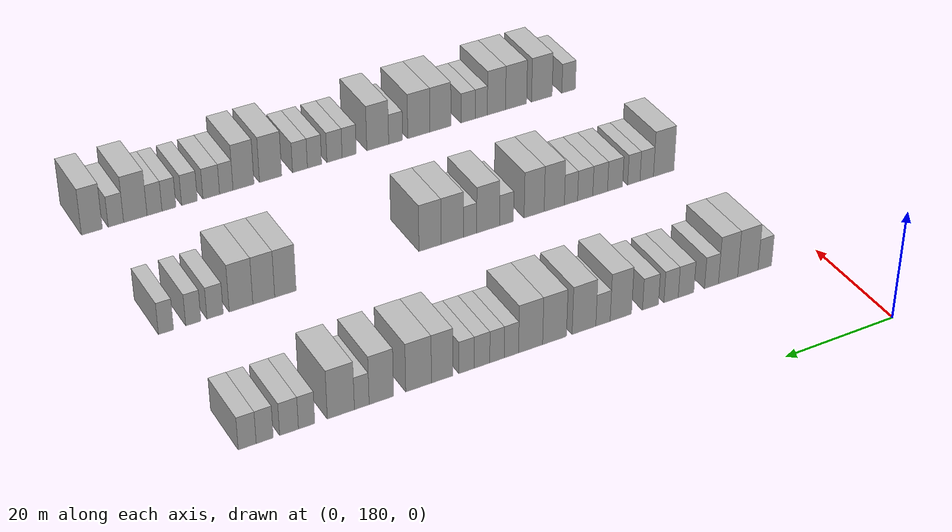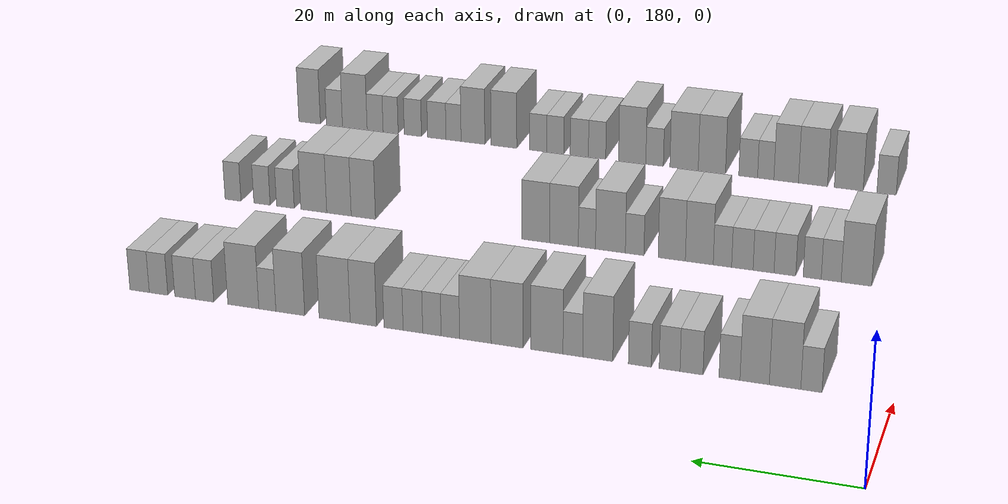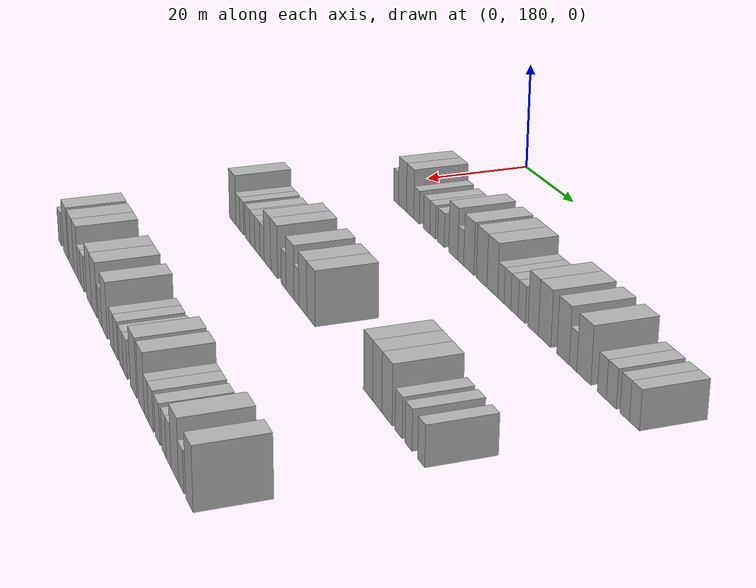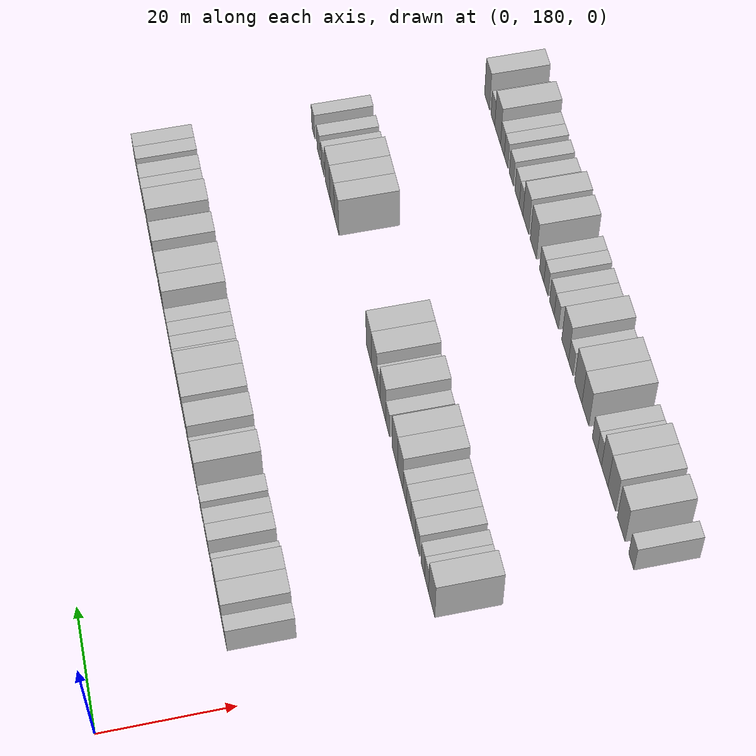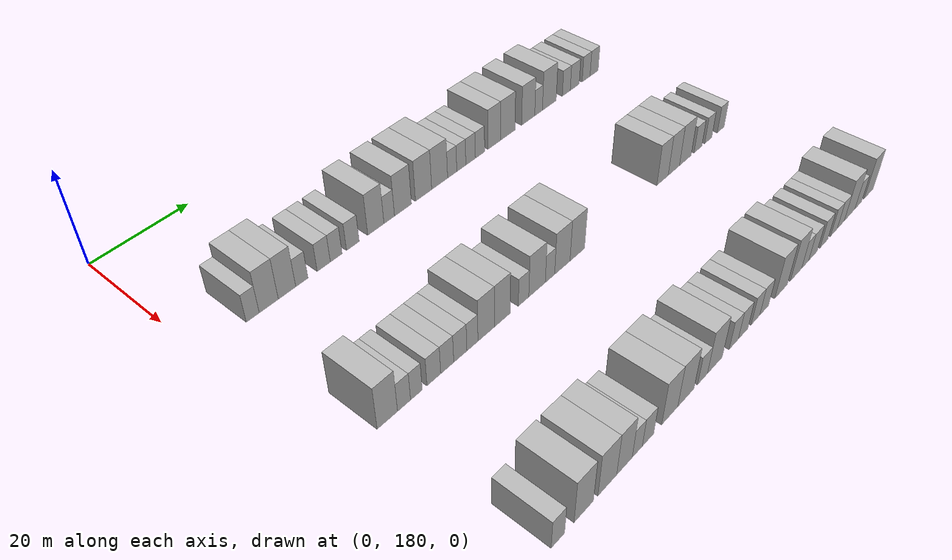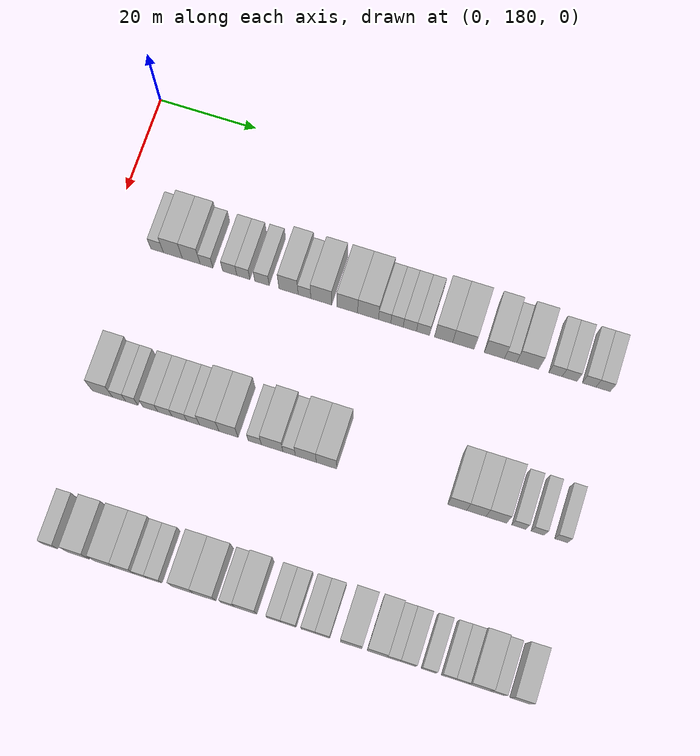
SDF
<sdf version="1.6">
 <world name="default">
  <model name="building_115">
   <static>1</static>
   <pose>25.0000 189.9657 0 0.000000 0.000000 0.000000</pose>
   <link name="link">
    <pose>0 0 3.00 0 0 0</pose>
    <collision name="collision"><geometry><box><size>10.0000 2.5913 6.0000</size></box></geometry></collision>
    <visual name="visual">
     <cast_shadows>0</cast_shadows>
     <geometry><box><size>10.0000 2.5913 6.0000</size></box></geometry>
     <material>
      <script>
       <uri>model://HANNAS_wall/materials/scripts</uri>
       <uri>model://HANNAS_wall/materials/textures</uri>
       <name>vrc/HANNAS_wall</name>
      </script>
     </material>
    </visual>
   </link>
  </model>
  <model name="building_116">
   <static>1</static>
   <pose>25.0000 193.2007 0 0.000000 0.000000 0.000000</pose>
   <link name="link">
    <pose>0 0 4.50 0 0 0</pose>
    <collision name="collision"><geometry><box><size>10.0000 3.8787 9.0000</size></box></geometry></collision>
    <visual name="visual">
     <cast_shadows>0</cast_shadows>
     <geometry><box><size>10.0000 3.8787 9.0000</size></box></geometry>
     <material>
      <script>
       <uri>model://HANNAS_wall/materials/scripts</uri>
       <uri>model://HANNAS_wall/materials/textures</uri>
       <name>vrc/HANNAS_wall</name>
      </script>
     </material>
    </visual>
   </link>
  </model>
  <model name="building_117">
   <static>1</static>
   <pose>25.0000 196.9567 0 0.000000 0.000000 0.000000</pose>
   <link name="link">
    <pose>0 0 4.50 0 0 0</pose>
    <collision name="collision"><geometry><box><size>10.0000 3.6334 9.0000</size></box></geometry></collision>
    <visual name="visual">
     <cast_shadows>0</cast_shadows>
     <geometry><box><size>10.0000 3.6334 9.0000</size></box></geometry>
     <material>
      <script>
       <uri>model://HANNAS_wall/materials/scripts</uri>
       <uri>model://HANNAS_wall/materials/textures</uri>
       <name>vrc/HANNAS_wall</name>
      </script>
     </material>
    </visual>
   </link>
  </model>
  <model name="building_118">
   <static>1</static>
   <pose>25.0000 200.0818 0 0.000000 0.000000 0.000000</pose>
   <link name="link">
    <pose>0 0 3.00 0 0 0</pose>
    <collision name="collision"><geometry><box><size>10.0000 2.6168 6.0000</size></box></geometry></collision>
    <visual name="visual">
     <cast_shadows>0</cast_shadows>
     <geometry><box><size>10.0000 2.6168 6.0000</size></box></geometry>
     <material>
      <script>
       <uri>model://HANNAS_wall/materials/scripts</uri>
       <uri>model://HANNAS_wall/materials/textures</uri>
       <name>vrc/HANNAS_wall</name>
      </script>
     </material>
    </visual>
   </link>
  </model>
  <model name="building_119">
   <static>1</static>
   <pose>25.0000 204.8386 0 0.000000 0.000000 0.000000</pose>
   <link name="link">
    <pose>0 0 3.00 0 0 0</pose>
    <collision name="collision"><geometry><box><size>10.0000 2.8968 6.0000</size></box></geometry></collision>
    <visual name="visual">
     <cast_shadows>0</cast_shadows>
     <geometry><box><size>10.0000 2.8968 6.0000</size></box></geometry>
     <material>
      <script>
       <uri>model://HANNAS_wall/materials/scripts</uri>
       <uri>model://HANNAS_wall/materials/textures</uri>
       <name>vrc/HANNAS_wall</name>
      </script>
     </material>
    </visual>
   </link>
  </model>
  <model name="building_120">
   <static>1</static>
   <pose>25.0000 207.6082 0 0.000000 0.000000 0.000000</pose>
   <link name="link">
    <pose>0 0 3.00 0 0 0</pose>
    <collision name="collision"><geometry><box><size>10.0000 2.6425 6.0000</size></box></geometry></collision>
    <visual name="visual">
     <cast_shadows>0</cast_shadows>
     <geometry><box><size>10.0000 2.6425 6.0000</size></box></geometry>
     <material>
      <script>
       <uri>model://HANNAS_wall/materials/scripts</uri>
       <uri>model://HANNAS_wall/materials/textures</uri>
       <name>vrc/HANNAS_wall</name>
      </script>
     </material>
    </visual>
   </link>
  </model>
  <model name="building_121">
   <static>1</static>
   <pose>25.0000 211.3905 0 0.000000 0.000000 0.000000</pose>
   <link name="link">
    <pose>0 0 3.00 0 0 0</pose>
    <collision name="collision"><geometry><box><size>10.0000 2.9220 6.0000</size></box></geometry></collision>
    <visual name="visual">
     <cast_shadows>0</cast_shadows>
     <geometry><box><size>10.0000 2.9220 6.0000</size></box></geometry>
     <material>
      <script>
       <uri>model://HANNAS_wall/materials/scripts</uri>
       <uri>model://HANNAS_wall/materials/textures</uri>
       <name>vrc/HANNAS_wall</name>
      </script>
     </material>
    </visual>
   </link>
  </model>
  <model name="building_122">
   <static>1</static>
   <pose>25.0000 216.7865 0 0.000000 0.000000 0.000000</pose>
   <link name="link">
    <pose>0 0 4.50 0 0 0</pose>
    <collision name="collision"><geometry><box><size>10.0000 3.8701 9.0000</size></box></geometry></collision>
    <visual name="visual">
     <cast_shadows>0</cast_shadows>
     <geometry><box><size>10.0000 3.8701 9.0000</size></box></geometry>
     <material>
      <script>
       <uri>model://HANNAS_wall/materials/scripts</uri>
       <uri>model://HANNAS_wall/materials/textures</uri>
       <name>vrc/HANNAS_wall</name>
      </script>
     </material>
    </visual>
   </link>
  </model>
  <model name="building_123">
   <static>1</static>
   <pose>25.0000 220.0058 0 0.000000 0.000000 0.000000</pose>
   <link name="link">
    <pose>0 0 3.00 0 0 0</pose>
    <collision name="collision"><geometry><box><size>10.0000 2.5684 6.0000</size></box></geometry></collision>
    <visual name="visual">
     <cast_shadows>0</cast_shadows>
     <geometry><box><size>10.0000 2.5684 6.0000</size></box></geometry>
     <material>
      <script>
       <uri>model://HANNAS_wall/materials/scripts</uri>
       <uri>model://HANNAS_wall/materials/textures</uri>
       <name>vrc/HANNAS_wall</name>
      </script>
     </material>
    </visual>
   </link>
  </model>
  <model name="building_124">
   <static>1</static>
   <pose>25.0000 223.4041 0 0.000000 0.000000 0.000000</pose>
   <link name="link">
    <pose>0 0 4.50 0 0 0</pose>
    <collision name="collision"><geometry><box><size>10.0000 4.2282 9.0000</size></box></geometry></collision>
    <visual name="visual">
     <cast_shadows>0</cast_shadows>
     <geometry><box><size>10.0000 4.2282 9.0000</size></box></geometry>
     <material>
      <script>
       <uri>model://HANNAS_wall/materials/scripts</uri>
       <uri>model://HANNAS_wall/materials/textures</uri>
       <name>vrc/HANNAS_wall</name>
      </script>
     </material>
    </visual>
   </link>
  </model>
  <model name="building_125">
   <static>1</static>
   <pose>25.0000 228.6170 0 0.000000 0.000000 0.000000</pose>
   <link name="link">
    <pose>0 0 4.50 0 0 0</pose>
    <collision name="collision"><geometry><box><size>10.0000 4.1978 9.0000</size></box></geometry></collision>
    <visual name="visual">
     <cast_shadows>0</cast_shadows>
     <geometry><box><size>10.0000 4.1978 9.0000</size></box></geometry>
     <material>
      <script>
       <uri>model://HANNAS_wall/materials/scripts</uri>
       <uri>model://HANNAS_wall/materials/textures</uri>
       <name>vrc/HANNAS_wall</name>
      </script>
     </material>
    </visual>
   </link>
  </model>
  <model name="building_126">
   <static>1</static>
   <pose>25.0000 232.8153 0 0.000000 0.000000 0.000000</pose>
   <link name="link">
    <pose>0 0 4.50 0 0 0</pose>
    <collision name="collision"><geometry><box><size>10.0000 4.1987 9.0000</size></box></geometry></collision>
    <visual name="visual">
     <cast_shadows>0</cast_shadows>
     <geometry><box><size>10.0000 4.1987 9.0000</size></box></geometry>
     <material>
      <script>
       <uri>model://HANNAS_wall/materials/scripts</uri>
       <uri>model://HANNAS_wall/materials/textures</uri>
       <name>vrc/HANNAS_wall</name>
      </script>
     </material>
    </visual>
   </link>
  </model>
  <model name="building_127">
   <static>1</static>
   <pose>25.0000 236.1542 0 0.000000 0.000000 0.000000</pose>
   <link name="link">
    <pose>0 0 3.00 0 0 0</pose>
    <collision name="collision"><geometry><box><size>10.0000 2.4790 6.0000</size></box></geometry></collision>
    <visual name="visual">
     <cast_shadows>0</cast_shadows>
     <geometry><box><size>10.0000 2.4790 6.0000</size></box></geometry>
     <material>
      <script>
       <uri>model://HANNAS_wall/materials/scripts</uri>
       <uri>model://HANNAS_wall/materials/textures</uri>
       <name>vrc/HANNAS_wall</name>
      </script>
     </material>
    </visual>
   </link>
  </model>
  <model name="building_128">
   <static>1</static>
   <pose>25.0000 238.6329 0 0.000000 0.000000 0.000000</pose>
   <link name="link">
    <pose>0 0 3.00 0 0 0</pose>
    <collision name="collision"><geometry><box><size>10.0000 2.4785 6.0000</size></box></geometry></collision>
    <visual name="visual">
     <cast_shadows>0</cast_shadows>
     <geometry><box><size>10.0000 2.4785 6.0000</size></box></geometry>
     <material>
      <script>
       <uri>model://HANNAS_wall/materials/scripts</uri>
       <uri>model://HANNAS_wall/materials/textures</uri>
       <name>vrc/HANNAS_wall</name>
      </script>
     </material>
    </visual>
   </link>
  </model>
  <model name="building_129">
   <static>1</static>
   <pose>25.0000 241.1978 0 0.000000 0.000000 0.000000</pose>
   <link name="link">
    <pose>0 0 3.00 0 0 0</pose>
    <collision name="collision"><geometry><box><size>10.0000 2.6514 6.0000</size></box></geometry></collision>
    <visual name="visual">
     <cast_shadows>0</cast_shadows>
     <geometry><box><size>10.0000 2.6514 6.0000</size></box></geometry>
     <material>
      <script>
       <uri>model://HANNAS_wall/materials/scripts</uri>
       <uri>model://HANNAS_wall/materials/textures</uri>
       <name>vrc/HANNAS_wall</name>
      </script>
     </material>
    </visual>
   </link>
  </model>
  <model name="building_130">
   <static>1</static>
   <pose>25.0000 243.8275 0 0.000000 0.000000 0.000000</pose>
   <link name="link">
    <pose>0 0 3.00 0 0 0</pose>
    <collision name="collision"><geometry><box><size>10.0000 2.6080 6.0000</size></box></geometry></collision>
    <visual name="visual">
     <cast_shadows>0</cast_shadows>
     <geometry><box><size>10.0000 2.6080 6.0000</size></box></geometry>
     <material>
      <script>
       <uri>model://HANNAS_wall/materials/scripts</uri>
       <uri>model://HANNAS_wall/materials/textures</uri>
       <name>vrc/HANNAS_wall</name>
      </script>
     </material>
    </visual>
   </link>
  </model>
  <model name="building_131">
   <static>1</static>
   <pose>25.0000 247.9406 0 0.000000 0.000000 0.000000</pose>
   <link name="link">
    <pose>0 0 4.50 0 0 0</pose>
    <collision name="collision"><geometry><box><size>10.0000 3.6183 9.0000</size></box></geometry></collision>
    <visual name="visual">
     <cast_shadows>0</cast_shadows>
     <geometry><box><size>10.0000 3.6183 9.0000</size></box></geometry>
     <material>
      <script>
       <uri>model://HANNAS_wall/materials/scripts</uri>
       <uri>model://HANNAS_wall/materials/textures</uri>
       <name>vrc/HANNAS_wall</name>
      </script>
     </material>
    </visual>
   </link>
  </model>
  <model name="building_132">
   <static>1</static>
   <pose>25.0000 251.8926 0 0.000000 0.000000 0.000000</pose>
   <link name="link">
    <pose>0 0 4.50 0 0 0</pose>
    <collision name="collision"><geometry><box><size>10.0000 4.2857 9.0000</size></box></geometry></collision>
    <visual name="visual">
     <cast_shadows>0</cast_shadows>
     <geometry><box><size>10.0000 4.2857 9.0000</size></box></geometry>
     <material>
      <script>
       <uri>model://HANNAS_wall/materials/scripts</uri>
       <uri>model://HANNAS_wall/materials/textures</uri>
       <name>vrc/HANNAS_wall</name>
      </script>
     </material>
    </visual>
   </link>
  </model>
  <model name="building_133">
   <static>1</static>
   <pose>25.0000 258.0477 0 0.000000 0.000000 0.000000</pose>
   <link name="link">
    <pose>0 0 4.50 0 0 0</pose>
    <collision name="collision"><geometry><box><size>10.0000 4.0246 9.0000</size></box></geometry></collision>
    <visual name="visual">
     <cast_shadows>0</cast_shadows>
     <geometry><box><size>10.0000 4.0246 9.0000</size></box></geometry>
     <material>
      <script>
       <uri>model://HANNAS_wall/materials/scripts</uri>
       <uri>model://HANNAS_wall/materials/textures</uri>
       <name>vrc/HANNAS_wall</name>
      </script>
     </material>
    </visual>
   </link>
  </model>
  <model name="building_134">
   <static>1</static>
   <pose>25.0000 261.2603 0 0.000000 0.000000 0.000000</pose>
   <link name="link">
    <pose>0 0 3.00 0 0 0</pose>
    <collision name="collision"><geometry><box><size>10.0000 2.4005 6.0000</size></box></geometry></collision>
    <visual name="visual">
     <cast_shadows>0</cast_shadows>
     <geometry><box><size>10.0000 2.4005 6.0000</size></box></geometry>
     <material>
      <script>
       <uri>model://HANNAS_wall/materials/scripts</uri>
       <uri>model://HANNAS_wall/materials/textures</uri>
       <name>vrc/HANNAS_wall</name>
      </script>
     </material>
    </visual>
   </link>
  </model>
  <model name="building_135">
   <static>1</static>
   <pose>25.0000 264.6510 0 0.000000 0.000000 0.000000</pose>
   <link name="link">
    <pose>0 0 4.50 0 0 0</pose>
    <collision name="collision"><geometry><box><size>10.0000 4.3810 9.0000</size></box></geometry></collision>
    <visual name="visual">
     <cast_shadows>0</cast_shadows>
     <geometry><box><size>10.0000 4.3810 9.0000</size></box></geometry>
     <material>
      <script>
       <uri>model://HANNAS_wall/materials/scripts</uri>
       <uri>model://HANNAS_wall/materials/textures</uri>
       <name>vrc/HANNAS_wall</name>
      </script>
     </material>
    </visual>
   </link>
  </model>
  <model name="building_136">
   <static>1</static>
   <pose>25.0000 270.1463 0 0.000000 0.000000 0.000000</pose>
   <link name="link">
    <pose>0 0 3.00 0 0 0</pose>
    <collision name="collision"><geometry><box><size>10.0000 2.6095 6.0000</size></box></geometry></collision>
    <visual name="visual">
     <cast_shadows>0</cast_shadows>
     <geometry><box><size>10.0000 2.6095 6.0000</size></box></geometry>
     <material>
      <script>
       <uri>model://HANNAS_wall/materials/scripts</uri>
       <uri>model://HANNAS_wall/materials/textures</uri>
       <name>vrc/HANNAS_wall</name>
      </script>
     </material>
    </visual>
   </link>
  </model>
  <model name="building_137">
   <static>1</static>
   <pose>25.0000 272.9414 0 0.000000 0.000000 0.000000</pose>
   <link name="link">
    <pose>0 0 3.00 0 0 0</pose>
    <collision name="collision"><geometry><box><size>10.0000 2.9807 6.0000</size></box></geometry></collision>
    <visual name="visual">
     <cast_shadows>0</cast_shadows>
     <geometry><box><size>10.0000 2.9807 6.0000</size></box></geometry>
     <material>
      <script>
       <uri>model://HANNAS_wall/materials/scripts</uri>
       <uri>model://HANNAS_wall/materials/textures</uri>
       <name>vrc/HANNAS_wall</name>
      </script>
     </material>
    </visual>
   </link>
  </model>
  <model name="building_138">
   <static>1</static>
   <pose>25.0000 276.7723 0 0.000000 0.000000 0.000000</pose>
   <link name="link">
    <pose>0 0 3.00 0 0 0</pose>
    <collision name="collision"><geometry><box><size>10.0000 2.6812 6.0000</size></box></geometry></collision>
    <visual name="visual">
     <cast_shadows>0</cast_shadows>
     <geometry><box><size>10.0000 2.6812 6.0000</size></box></geometry>
     <material>
      <script>
       <uri>model://HANNAS_wall/materials/scripts</uri>
       <uri>model://HANNAS_wall/materials/textures</uri>
       <name>vrc/HANNAS_wall</name>
      </script>
     </material>
    </visual>
   </link>
  </model>
  <model name="building_139">
   <static>1</static>
   <pose>25.0000 279.5157 0 0.000000 0.000000 0.000000</pose>
   <link name="link">
    <pose>0 0 3.00 0 0 0</pose>
    <collision name="collision"><geometry><box><size>10.0000 2.8056 6.0000</size></box></geometry></collision>
    <visual name="visual">
     <cast_shadows>0</cast_shadows>
     <geometry><box><size>10.0000 2.8056 6.0000</size></box></geometry>
     <material>
      <script>
       <uri>model://HANNAS_wall/materials/scripts</uri>
       <uri>model://HANNAS_wall/materials/textures</uri>
       <name>vrc/HANNAS_wall</name>
      </script>
     </material>
    </visual>
   </link>
  </model>
  <model name="building_257">
   <static>1</static>
   <pose>55.0000 189.7121 0 0.000000 0.000000 0.000000</pose>
   <link name="link">
    <pose>0 0 4.50 0 0 0</pose>
    <collision name="collision"><geometry><box><size>10.0000 4.0807 9.0000</size></box></geometry></collision>
    <visual name="visual">
     <cast_shadows>0</cast_shadows>
     <geometry><box><size>10.0000 4.0807 9.0000</size></box></geometry>
     <material>
      <script>
       <uri>model://HANNAS_wall/materials/scripts</uri>
       <uri>model://HANNAS_wall/materials/textures</uri>
       <name>vrc/HANNAS_wall</name>
      </script>
     </material>
    </visual>
   </link>
  </model>
  <model name="building_258">
   <static>1</static>
   <pose>55.0000 193.0856 0 0.000000 0.000000 0.000000</pose>
   <link name="link">
    <pose>0 0 3.00 0 0 0</pose>
    <collision name="collision"><geometry><box><size>10.0000 2.6662 6.0000</size></box></geometry></collision>
    <visual name="visual">
     <cast_shadows>0</cast_shadows>
     <geometry><box><size>10.0000 2.6662 6.0000</size></box></geometry>
     <material>
      <script>
       <uri>model://HANNAS_wall/materials/scripts</uri>
       <uri>model://HANNAS_wall/materials/textures</uri>
       <name>vrc/HANNAS_wall</name>
      </script>
     </material>
    </visual>
   </link>
  </model>
  <model name="building_259">
   <static>1</static>
   <pose>55.0000 195.6344 0 0.000000 0.000000 0.000000</pose>
   <link name="link">
    <pose>0 0 3.00 0 0 0</pose>
    <collision name="collision"><geometry><box><size>10.0000 2.4313 6.0000</size></box></geometry></collision>
    <visual name="visual">
     <cast_shadows>0</cast_shadows>
     <geometry><box><size>10.0000 2.4313 6.0000</size></box></geometry>
     <material>
      <script>
       <uri>model://HANNAS_wall/materials/scripts</uri>
       <uri>model://HANNAS_wall/materials/textures</uri>
       <name>vrc/HANNAS_wall</name>
      </script>
     </material>
    </visual>
   </link>
  </model>
  <model name="building_260">
   <static>1</static>
   <pose>55.0000 199.3280 0 0.000000 0.000000 0.000000</pose>
   <link name="link">
    <pose>0 0 3.00 0 0 0</pose>
    <collision name="collision"><geometry><box><size>10.0000 2.9559 6.0000</size></box></geometry></collision>
    <visual name="visual">
     <cast_shadows>0</cast_shadows>
     <geometry><box><size>10.0000 2.9559 6.0000</size></box></geometry>
     <material>
      <script>
       <uri>model://HANNAS_wall/materials/scripts</uri>
       <uri>model://HANNAS_wall/materials/textures</uri>
       <name>vrc/HANNAS_wall</name>
      </script>
     </material>
    </visual>
   </link>
  </model>
  <model name="building_261">
   <static>1</static>
   <pose>55.0000 202.2358 0 0.000000 0.000000 0.000000</pose>
   <link name="link">
    <pose>0 0 3.00 0 0 0</pose>
    <collision name="collision"><geometry><box><size>10.0000 2.8597 6.0000</size></box></geometry></collision>
    <visual name="visual">
     <cast_shadows>0</cast_shadows>
     <geometry><box><size>10.0000 2.8597 6.0000</size></box></geometry>
     <material>
      <script>
       <uri>model://HANNAS_wall/materials/scripts</uri>
       <uri>model://HANNAS_wall/materials/textures</uri>
       <name>vrc/HANNAS_wall</name>
      </script>
     </material>
    </visual>
   </link>
  </model>
  <model name="building_262">
   <static>1</static>
   <pose>55.0000 205.1383 0 0.000000 0.000000 0.000000</pose>
   <link name="link">
    <pose>0 0 3.00 0 0 0</pose>
    <collision name="collision"><geometry><box><size>10.0000 2.9451 6.0000</size></box></geometry></collision>
    <visual name="visual">
     <cast_shadows>0</cast_shadows>
     <geometry><box><size>10.0000 2.9451 6.0000</size></box></geometry>
     <material>
      <script>
       <uri>model://HANNAS_wall/materials/scripts</uri>
       <uri>model://HANNAS_wall/materials/textures</uri>
       <name>vrc/HANNAS_wall</name>
      </script>
     </material>
    </visual>
   </link>
  </model>
  <model name="building_263">
   <static>1</static>
   <pose>55.0000 207.8787 0 0.000000 0.000000 0.000000</pose>
   <link name="link">
    <pose>0 0 3.00 0 0 0</pose>
    <collision name="collision"><geometry><box><size>10.0000 2.5357 6.0000</size></box></geometry></collision>
    <visual name="visual">
     <cast_shadows>0</cast_shadows>
     <geometry><box><size>10.0000 2.5357 6.0000</size></box></geometry>
     <material>
      <script>
       <uri>model://HANNAS_wall/materials/scripts</uri>
       <uri>model://HANNAS_wall/materials/textures</uri>
       <name>vrc/HANNAS_wall</name>
      </script>
     </material>
    </visual>
   </link>
  </model>
  <model name="building_264">
   <static>1</static>
   <pose>55.0000 211.0791 0 0.000000 0.000000 0.000000</pose>
   <link name="link">
    <pose>0 0 4.50 0 0 0</pose>
    <collision name="collision"><geometry><box><size>10.0000 3.8650 9.0000</size></box></geometry></collision>
    <visual name="visual">
     <cast_shadows>0</cast_shadows>
     <geometry><box><size>10.0000 3.8650 9.0000</size></box></geometry>
     <material>
      <script>
       <uri>model://HANNAS_wall/materials/scripts</uri>
       <uri>model://HANNAS_wall/materials/textures</uri>
       <name>vrc/HANNAS_wall</name>
      </script>
     </material>
    </visual>
   </link>
  </model>
  <model name="building_265">
   <static>1</static>
   <pose>55.0000 214.9082 0 0.000000 0.000000 0.000000</pose>
   <link name="link">
    <pose>0 0 4.50 0 0 0</pose>
    <collision name="collision"><geometry><box><size>10.0000 3.7932 9.0000</size></box></geometry></collision>
    <visual name="visual">
     <cast_shadows>0</cast_shadows>
     <geometry><box><size>10.0000 3.7932 9.0000</size></box></geometry>
     <material>
      <script>
       <uri>model://HANNAS_wall/materials/scripts</uri>
       <uri>model://HANNAS_wall/materials/textures</uri>
       <name>vrc/HANNAS_wall</name>
      </script>
     </material>
    </visual>
   </link>
  </model>
  <model name="building_266">
   <static>1</static>
   <pose>55.0000 220.1169 0 0.000000 0.000000 0.000000</pose>
   <link name="link">
    <pose>0 0 3.00 0 0 0</pose>
    <collision name="collision"><geometry><box><size>10.0000 2.6241 6.0000</size></box></geometry></collision>
    <visual name="visual">
     <cast_shadows>0</cast_shadows>
     <geometry><box><size>10.0000 2.6241 6.0000</size></box></geometry>
     <material>
      <script>
       <uri>model://HANNAS_wall/materials/scripts</uri>
       <uri>model://HANNAS_wall/materials/textures</uri>
       <name>vrc/HANNAS_wall</name>
      </script>
     </material>
    </visual>
   </link>
  </model>
  <model name="building_267">
   <static>1</static>
   <pose>55.0000 223.5420 0 0.000000 0.000000 0.000000</pose>
   <link name="link">
    <pose>0 0 4.50 0 0 0</pose>
    <collision name="collision"><geometry><box><size>10.0000 4.2261 9.0000</size></box></geometry></collision>
    <visual name="visual">
     <cast_shadows>0</cast_shadows>
     <geometry><box><size>10.0000 4.2261 9.0000</size></box></geometry>
     <material>
      <script>
       <uri>model://HANNAS_wall/materials/scripts</uri>
       <uri>model://HANNAS_wall/materials/textures</uri>
       <name>vrc/HANNAS_wall</name>
      </script>
     </material>
    </visual>
   </link>
  </model>
  <model name="building_268">
   <static>1</static>
   <pose>55.0000 226.8796 0 0.000000 0.000000 0.000000</pose>
   <link name="link">
    <pose>0 0 3.00 0 0 0</pose>
    <collision name="collision"><geometry><box><size>10.0000 2.4490 6.0000</size></box></geometry></collision>
    <visual name="visual">
     <cast_shadows>0</cast_shadows>
     <geometry><box><size>10.0000 2.4490 6.0000</size></box></geometry>
     <material>
      <script>
       <uri>model://HANNAS_wall/materials/scripts</uri>
       <uri>model://HANNAS_wall/materials/textures</uri>
       <name>vrc/HANNAS_wall</name>
      </script>
     </material>
    </visual>
   </link>
  </model>
  <model name="building_269">
   <static>1</static>
   <pose>55.0000 230.1588 0 0.000000 0.000000 0.000000</pose>
   <link name="link">
    <pose>0 0 4.50 0 0 0</pose>
    <collision name="collision"><geometry><box><size>10.0000 4.1093 9.0000</size></box></geometry></collision>
    <visual name="visual">
     <cast_shadows>0</cast_shadows>
     <geometry><box><size>10.0000 4.1093 9.0000</size></box></geometry>
     <material>
      <script>
       <uri>model://HANNAS_wall/materials/scripts</uri>
       <uri>model://HANNAS_wall/materials/textures</uri>
       <name>vrc/HANNAS_wall</name>
      </script>
     </material>
    </visual>
   </link>
  </model>
  <model name="building_270">
   <static>1</static>
   <pose>55.0000 234.2159 0 0.000000 0.000000 0.000000</pose>
   <link name="link">
    <pose>0 0 4.50 0 0 0</pose>
    <collision name="collision"><geometry><box><size>10.0000 4.0050 9.0000</size></box></geometry></collision>
    <visual name="visual">
     <cast_shadows>0</cast_shadows>
     <geometry><box><size>10.0000 4.0050 9.0000</size></box></geometry>
     <material>
      <script>
       <uri>model://HANNAS_wall/materials/scripts</uri>
       <uri>model://HANNAS_wall/materials/textures</uri>
       <name>vrc/HANNAS_wall</name>
      </script>
     </material>
    </visual>
   </link>
  </model>
  <model name="building_271">
   <static>1</static>
   <pose>55.0000 259.7252 0 0.000000 0.000000 0.000000</pose>
   <link name="link">
    <pose>0 0 4.50 0 0 0</pose>
    <collision name="collision"><geometry><box><size>10.0000 3.6712 9.0000</size></box></geometry></collision>
    <visual name="visual">
     <cast_shadows>0</cast_shadows>
     <geometry><box><size>10.0000 3.6712 9.0000</size></box></geometry>
     <material>
      <script>
       <uri>model://HANNAS_wall/materials/scripts</uri>
       <uri>model://HANNAS_wall/materials/textures</uri>
       <name>vrc/HANNAS_wall</name>
      </script>
     </material>
    </visual>
   </link>
  </model>
  <model name="building_272">
   <static>1</static>
   <pose>55.0000 263.4195 0 0.000000 0.000000 0.000000</pose>
   <link name="link">
    <pose>0 0 4.50 0 0 0</pose>
    <collision name="collision"><geometry><box><size>10.0000 3.7174 9.0000</size></box></geometry></collision>
    <visual name="visual">
     <cast_shadows>0</cast_shadows>
     <geometry><box><size>10.0000 3.7174 9.0000</size></box></geometry>
     <material>
      <script>
       <uri>model://HANNAS_wall/materials/scripts</uri>
       <uri>model://HANNAS_wall/materials/textures</uri>
       <name>vrc/HANNAS_wall</name>
      </script>
     </material>
    </visual>
   </link>
  </model>
  <model name="building_273">
   <static>1</static>
   <pose>55.0000 267.2707 0 0.000000 0.000000 0.000000</pose>
   <link name="link">
    <pose>0 0 4.50 0 0 0</pose>
    <collision name="collision"><geometry><box><size>10.0000 3.9849 9.0000</size></box></geometry></collision>
    <visual name="visual">
     <cast_shadows>0</cast_shadows>
     <geometry><box><size>10.0000 3.9849 9.0000</size></box></geometry>
     <material>
      <script>
       <uri>model://HANNAS_wall/materials/scripts</uri>
       <uri>model://HANNAS_wall/materials/textures</uri>
       <name>vrc/HANNAS_wall</name>
      </script>
     </material>
    </visual>
   </link>
  </model>
  <model name="building_274">
   <static>1</static>
   <pose>55.0000 271.6258 0 0.000000 0.000000 0.000000</pose>
   <link name="link">
    <pose>0 0 3.00 0 0 0</pose>
    <collision name="collision"><geometry><box><size>10.0000 2.7253 6.0000</size></box></geometry></collision>
    <visual name="visual">
     <cast_shadows>0</cast_shadows>
     <geometry><box><size>10.0000 2.7253 6.0000</size></box></geometry>
     <material>
      <script>
       <uri>model://HANNAS_wall/materials/scripts</uri>
       <uri>model://HANNAS_wall/materials/textures</uri>
       <name>vrc/HANNAS_wall</name>
      </script>
     </material>
    </visual>
   </link>
  </model>
  <model name="building_275">
   <static>1</static>
   <pose>55.0000 275.2507 0 0.000000 0.000000 0.000000</pose>
   <link name="link">
    <pose>0 0 3.00 0 0 0</pose>
    <collision name="collision"><geometry><box><size>10.0000 2.5244 6.0000</size></box></geometry></collision>
    <visual name="visual">
     <cast_shadows>0</cast_shadows>
     <geometry><box><size>10.0000 2.5244 6.0000</size></box></geometry>
     <material>
      <script>
       <uri>model://HANNAS_wall/materials/scripts</uri>
       <uri>model://HANNAS_wall/materials/textures</uri>
       <name>vrc/HANNAS_wall</name>
      </script>
     </material>
    </visual>
   </link>
  </model>
  <model name="building_276">
   <static>1</static>
   <pose>55.0000 279.7564 0 0.000000 0.000000 0.000000</pose>
   <link name="link">
    <pose>0 0 3.00 0 0 0</pose>
    <collision name="collision"><geometry><box><size>10.0000 2.4870 6.0000</size></box></geometry></collision>
    <visual name="visual">
     <cast_shadows>0</cast_shadows>
     <geometry><box><size>10.0000 2.4870 6.0000</size></box></geometry>
     <material>
      <script>
       <uri>model://HANNAS_wall/materials/scripts</uri>
       <uri>model://HANNAS_wall/materials/textures</uri>
       <name>vrc/HANNAS_wall</name>
      </script>
     </material>
    </visual>
   </link>
  </model>
  <model name="building_393">
   <static>1</static>
   <pose>85.0000 190.5302 0 0.000000 0.000000 0.000000</pose>
   <link name="link">
    <pose>0 0 3.00 0 0 0</pose>
    <collision name="collision"><geometry><box><size>10.0000 2.8005 6.0000</size></box></geometry></collision>
    <visual name="visual">
     <cast_shadows>0</cast_shadows>
     <geometry><box><size>10.0000 2.8005 6.0000</size></box></geometry>
     <material>
      <script>
       <uri>model://HANNAS_wall/materials/scripts</uri>
       <uri>model://HANNAS_wall/materials/textures</uri>
       <name>vrc/HANNAS_wall</name>
      </script>
     </material>
    </visual>
   </link>
  </model>
  <model name="building_394">
   <static>1</static>
   <pose>85.0000 196.0380 0 0.000000 0.000000 0.000000</pose>
   <link name="link">
    <pose>0 0 4.50 0 0 0</pose>
    <collision name="collision"><geometry><box><size>10.0000 4.2153 9.0000</size></box></geometry></collision>
    <visual name="visual">
     <cast_shadows>0</cast_shadows>
     <geometry><box><size>10.0000 4.2153 9.0000</size></box></geometry>
     <material>
      <script>
       <uri>model://HANNAS_wall/materials/scripts</uri>
       <uri>model://HANNAS_wall/materials/textures</uri>
       <name>vrc/HANNAS_wall</name>
      </script>
     </material>
    </visual>
   </link>
  </model>
  <model name="building_395">
   <static>1</static>
   <pose>85.0000 201.2855 0 0.000000 0.000000 0.000000</pose>
   <link name="link">
    <pose>0 0 4.50 0 0 0</pose>
    <collision name="collision"><geometry><box><size>10.0000 4.2797 9.0000</size></box></geometry></collision>
    <visual name="visual">
     <cast_shadows>0</cast_shadows>
     <geometry><box><size>10.0000 4.2797 9.0000</size></box></geometry>
     <material>
      <script>
       <uri>model://HANNAS_wall/materials/scripts</uri>
       <uri>model://HANNAS_wall/materials/textures</uri>
       <name>vrc/HANNAS_wall</name>
      </script>
     </material>
    </visual>
   </link>
  </model>
  <model name="building_396">
   <static>1</static>
   <pose>85.0000 205.2517 0 0.000000 0.000000 0.000000</pose>
   <link name="link">
    <pose>0 0 4.50 0 0 0</pose>
    <collision name="collision"><geometry><box><size>10.0000 3.6527 9.0000</size></box></geometry></collision>
    <visual name="visual">
     <cast_shadows>0</cast_shadows>
     <geometry><box><size>10.0000 3.6527 9.0000</size></box></geometry>
     <material>
      <script>
       <uri>model://HANNAS_wall/materials/scripts</uri>
       <uri>model://HANNAS_wall/materials/textures</uri>
       <name>vrc/HANNAS_wall</name>
      </script>
     </material>
    </visual>
   </link>
  </model>
  <model name="building_397">
   <static>1</static>
   <pose>85.0000 208.2948 0 0.000000 0.000000 0.000000</pose>
   <link name="link">
    <pose>0 0 3.00 0 0 0</pose>
    <collision name="collision"><geometry><box><size>10.0000 2.4333 6.0000</size></box></geometry></collision>
    <visual name="visual">
     <cast_shadows>0</cast_shadows>
     <geometry><box><size>10.0000 2.4333 6.0000</size></box></geometry>
     <material>
      <script>
       <uri>model://HANNAS_wall/materials/scripts</uri>
       <uri>model://HANNAS_wall/materials/textures</uri>
       <name>vrc/HANNAS_wall</name>
      </script>
     </material>
    </visual>
   </link>
  </model>
  <model name="building_398">
   <static>1</static>
   <pose>85.0000 210.9200 0 0.000000 0.000000 0.000000</pose>
   <link name="link">
    <pose>0 0 3.00 0 0 0</pose>
    <collision name="collision"><geometry><box><size>10.0000 2.8173 6.0000</size></box></geometry></collision>
    <visual name="visual">
     <cast_shadows>0</cast_shadows>
     <geometry><box><size>10.0000 2.8173 6.0000</size></box></geometry>
     <material>
      <script>
       <uri>model://HANNAS_wall/materials/scripts</uri>
       <uri>model://HANNAS_wall/materials/textures</uri>
       <name>vrc/HANNAS_wall</name>
      </script>
     </material>
    </visual>
   </link>
  </model>
  <model name="building_399">
   <static>1</static>
   <pose>85.0000 216.3903 0 0.000000 0.000000 0.000000</pose>
   <link name="link">
    <pose>0 0 4.50 0 0 0</pose>
    <collision name="collision"><geometry><box><size>10.0000 4.1233 9.0000</size></box></geometry></collision>
    <visual name="visual">
     <cast_shadows>0</cast_shadows>
     <geometry><box><size>10.0000 4.1233 9.0000</size></box></geometry>
     <material>
      <script>
       <uri>model://HANNAS_wall/materials/scripts</uri>
       <uri>model://HANNAS_wall/materials/textures</uri>
       <name>vrc/HANNAS_wall</name>
      </script>
     </material>
    </visual>
   </link>
  </model>
  <model name="building_400">
   <static>1</static>
   <pose>85.0000 220.6075 0 0.000000 0.000000 0.000000</pose>
   <link name="link">
    <pose>0 0 4.50 0 0 0</pose>
    <collision name="collision"><geometry><box><size>10.0000 4.3111 9.0000</size></box></geometry></collision>
    <visual name="visual">
     <cast_shadows>0</cast_shadows>
     <geometry><box><size>10.0000 4.3111 9.0000</size></box></geometry>
     <material>
      <script>
       <uri>model://HANNAS_wall/materials/scripts</uri>
       <uri>model://HANNAS_wall/materials/textures</uri>
       <name>vrc/HANNAS_wall</name>
      </script>
     </material>
    </visual>
   </link>
  </model>
  <model name="building_401">
   <static>1</static>
   <pose>85.0000 225.1104 0 0.000000 0.000000 0.000000</pose>
   <link name="link">
    <pose>0 0 3.00 0 0 0</pose>
    <collision name="collision"><geometry><box><size>10.0000 2.6947 6.0000</size></box></geometry></collision>
    <visual name="visual">
     <cast_shadows>0</cast_shadows>
     <geometry><box><size>10.0000 2.6947 6.0000</size></box></geometry>
     <material>
      <script>
       <uri>model://HANNAS_wall/materials/scripts</uri>
       <uri>model://HANNAS_wall/materials/textures</uri>
       <name>vrc/HANNAS_wall</name>
      </script>
     </material>
    </visual>
   </link>
  </model>
  <model name="building_402">
   <static>1</static>
   <pose>85.0000 228.5553 0 0.000000 0.000000 0.000000</pose>
   <link name="link">
    <pose>0 0 4.50 0 0 0</pose>
    <collision name="collision"><geometry><box><size>10.0000 4.1951 9.0000</size></box></geometry></collision>
    <visual name="visual">
     <cast_shadows>0</cast_shadows>
     <geometry><box><size>10.0000 4.1951 9.0000</size></box></geometry>
     <material>
      <script>
       <uri>model://HANNAS_wall/materials/scripts</uri>
       <uri>model://HANNAS_wall/materials/textures</uri>
       <name>vrc/HANNAS_wall</name>
      </script>
     </material>
    </visual>
   </link>
  </model>
  <model name="building_403">
   <static>1</static>
   <pose>85.0000 233.9987 0 0.000000 0.000000 0.000000</pose>
   <link name="link">
    <pose>0 0 3.00 0 0 0</pose>
    <collision name="collision"><geometry><box><size>10.0000 2.6917 6.0000</size></box></geometry></collision>
    <visual name="visual">
     <cast_shadows>0</cast_shadows>
     <geometry><box><size>10.0000 2.6917 6.0000</size></box></geometry>
     <material>
      <script>
       <uri>model://HANNAS_wall/materials/scripts</uri>
       <uri>model://HANNAS_wall/materials/textures</uri>
       <name>vrc/HANNAS_wall</name>
      </script>
     </material>
    </visual>
   </link>
  </model>
  <model name="building_404">
   <static>1</static>
   <pose>85.0000 236.7744 0 0.000000 0.000000 0.000000</pose>
   <link name="link">
    <pose>0 0 3.00 0 0 0</pose>
    <collision name="collision"><geometry><box><size>10.0000 2.8597 6.0000</size></box></geometry></collision>
    <visual name="visual">
     <cast_shadows>0</cast_shadows>
     <geometry><box><size>10.0000 2.8597 6.0000</size></box></geometry>
     <material>
      <script>
       <uri>model://HANNAS_wall/materials/scripts</uri>
       <uri>model://HANNAS_wall/materials/textures</uri>
       <name>vrc/HANNAS_wall</name>
      </script>
     </material>
    </visual>
   </link>
  </model>
  <model name="building_405">
   <static>1</static>
   <pose>85.0000 240.5327 0 0.000000 0.000000 0.000000</pose>
   <link name="link">
    <pose>0 0 3.00 0 0 0</pose>
    <collision name="collision"><geometry><box><size>10.0000 2.6569 6.0000</size></box></geometry></collision>
    <visual name="visual">
     <cast_shadows>0</cast_shadows>
     <geometry><box><size>10.0000 2.6569 6.0000</size></box></geometry>
     <material>
      <script>
       <uri>model://HANNAS_wall/materials/scripts</uri>
       <uri>model://HANNAS_wall/materials/textures</uri>
       <name>vrc/HANNAS_wall</name>
      </script>
     </material>
    </visual>
   </link>
  </model>
  <model name="building_406">
   <static>1</static>
   <pose>85.0000 243.2435 0 0.000000 0.000000 0.000000</pose>
   <link name="link">
    <pose>0 0 3.00 0 0 0</pose>
    <collision name="collision"><geometry><box><size>10.0000 2.7647 6.0000</size></box></geometry></collision>
    <visual name="visual">
     <cast_shadows>0</cast_shadows>
     <geometry><box><size>10.0000 2.7647 6.0000</size></box></geometry>
     <material>
      <script>
       <uri>model://HANNAS_wall/materials/scripts</uri>
       <uri>model://HANNAS_wall/materials/textures</uri>
       <name>vrc/HANNAS_wall</name>
      </script>
     </material>
    </visual>
   </link>
  </model>
  <model name="building_407">
   <static>1</static>
   <pose>85.0000 248.6697 0 0.000000 0.000000 0.000000</pose>
   <link name="link">
    <pose>0 0 4.50 0 0 0</pose>
    <collision name="collision"><geometry><box><size>10.0000 4.0877 9.0000</size></box></geometry></collision>
    <visual name="visual">
     <cast_shadows>0</cast_shadows>
     <geometry><box><size>10.0000 4.0877 9.0000</size></box></geometry>
     <material>
      <script>
       <uri>model://HANNAS_wall/materials/scripts</uri>
       <uri>model://HANNAS_wall/materials/textures</uri>
       <name>vrc/HANNAS_wall</name>
      </script>
     </material>
    </visual>
   </link>
  </model>
  <model name="building_408">
   <static>1</static>
   <pose>85.0000 253.6259 0 0.000000 0.000000 0.000000</pose>
   <link name="link">
    <pose>0 0 4.50 0 0 0</pose>
    <collision name="collision"><geometry><box><size>10.0000 3.8248 9.0000</size></box></geometry></collision>
    <visual name="visual">
     <cast_shadows>0</cast_shadows>
     <geometry><box><size>10.0000 3.8248 9.0000</size></box></geometry>
     <material>
      <script>
       <uri>model://HANNAS_wall/materials/scripts</uri>
       <uri>model://HANNAS_wall/materials/textures</uri>
       <name>vrc/HANNAS_wall</name>
      </script>
     </material>
    </visual>
   </link>
  </model>
  <model name="building_409">
   <static>1</static>
   <pose>85.0000 256.7549 0 0.000000 0.000000 0.000000</pose>
   <link name="link">
    <pose>0 0 3.00 0 0 0</pose>
    <collision name="collision"><geometry><box><size>10.0000 2.4331 6.0000</size></box></geometry></collision>
    <visual name="visual">
     <cast_shadows>0</cast_shadows>
     <geometry><box><size>10.0000 2.4331 6.0000</size></box></geometry>
     <material>
      <script>
       <uri>model://HANNAS_wall/materials/scripts</uri>
       <uri>model://HANNAS_wall/materials/textures</uri>
       <name>vrc/HANNAS_wall</name>
      </script>
     </material>
    </visual>
   </link>
  </model>
  <model name="building_410">
   <static>1</static>
   <pose>85.0000 259.4638 0 0.000000 0.000000 0.000000</pose>
   <link name="link">
    <pose>0 0 3.00 0 0 0</pose>
    <collision name="collision"><geometry><box><size>10.0000 2.9847 6.0000</size></box></geometry></collision>
    <visual name="visual">
     <cast_shadows>0</cast_shadows>
     <geometry><box><size>10.0000 2.9847 6.0000</size></box></geometry>
     <material>
      <script>
       <uri>model://HANNAS_wall/materials/scripts</uri>
       <uri>model://HANNAS_wall/materials/textures</uri>
       <name>vrc/HANNAS_wall</name>
      </script>
     </material>
    </visual>
   </link>
  </model>
  <model name="building_411">
   <static>1</static>
   <pose>85.0000 263.3609 0 0.000000 0.000000 0.000000</pose>
   <link name="link">
    <pose>0 0 3.00 0 0 0</pose>
    <collision name="collision"><geometry><box><size>10.0000 2.8095 6.0000</size></box></geometry></collision>
    <visual name="visual">
     <cast_shadows>0</cast_shadows>
     <geometry><box><size>10.0000 2.8095 6.0000</size></box></geometry>
     <material>
      <script>
       <uri>model://HANNAS_wall/materials/scripts</uri>
       <uri>model://HANNAS_wall/materials/textures</uri>
       <name>vrc/HANNAS_wall</name>
      </script>
     </material>
    </visual>
   </link>
  </model>
  <model name="building_412">
   <static>1</static>
   <pose>85.0000 267.0023 0 0.000000 0.000000 0.000000</pose>
   <link name="link">
    <pose>0 0 3.00 0 0 0</pose>
    <collision name="collision"><geometry><box><size>10.0000 2.4732 6.0000</size></box></geometry></collision>
    <visual name="visual">
     <cast_shadows>0</cast_shadows>
     <geometry><box><size>10.0000 2.4732 6.0000</size></box></geometry>
     <material>
      <script>
       <uri>model://HANNAS_wall/materials/scripts</uri>
       <uri>model://HANNAS_wall/materials/textures</uri>
       <name>vrc/HANNAS_wall</name>
      </script>
     </material>
    </visual>
   </link>
  </model>
  <model name="building_413">
   <static>1</static>
   <pose>85.0000 269.5546 0 0.000000 0.000000 0.000000</pose>
   <link name="link">
    <pose>0 0 3.00 0 0 0</pose>
    <collision name="collision"><geometry><box><size>10.0000 2.6314 6.0000</size></box></geometry></collision>
    <visual name="visual">
     <cast_shadows>0</cast_shadows>
     <geometry><box><size>10.0000 2.6314 6.0000</size></box></geometry>
     <material>
      <script>
       <uri>model://HANNAS_wall/materials/scripts</uri>
       <uri>model://HANNAS_wall/materials/textures</uri>
       <name>vrc/HANNAS_wall</name>
      </script>
     </material>
    </visual>
   </link>
  </model>
  <model name="building_414">
   <static>1</static>
   <pose>85.0000 272.9143 0 0.000000 0.000000 0.000000</pose>
   <link name="link">
    <pose>0 0 4.50 0 0 0</pose>
    <collision name="collision"><geometry><box><size>10.0000 4.0881 9.0000</size></box></geometry></collision>
    <visual name="visual">
     <cast_shadows>0</cast_shadows>
     <geometry><box><size>10.0000 4.0881 9.0000</size></box></geometry>
     <material>
      <script>
       <uri>model://HANNAS_wall/materials/scripts</uri>
       <uri>model://HANNAS_wall/materials/textures</uri>
       <name>vrc/HANNAS_wall</name>
      </script>
     </material>
    </visual>
   </link>
  </model>
  <model name="building_415">
   <static>1</static>
   <pose>85.0000 276.2984 0 0.000000 0.000000 0.000000</pose>
   <link name="link">
    <pose>0 0 3.00 0 0 0</pose>
    <collision name="collision"><geometry><box><size>10.0000 2.6802 6.0000</size></box></geometry></collision>
    <visual name="visual">
     <cast_shadows>0</cast_shadows>
     <geometry><box><size>10.0000 2.6802 6.0000</size></box></geometry>
     <material>
      <script>
       <uri>model://HANNAS_wall/materials/scripts</uri>
       <uri>model://HANNAS_wall/materials/textures</uri>
       <name>vrc/HANNAS_wall</name>
      </script>
     </material>
    </visual>
   </link>
  </model>
  <model name="building_416">
   <static>1</static>
   <pose>85.0000 280.4421 0 0.000000 0.000000 0.000000</pose>
   <link name="link">
    <pose>0 0 4.50 0 0 0</pose>
    <collision name="collision"><geometry><box><size>10.0000 3.6071 9.0000</size></box></geometry></collision>
    <visual name="visual">
     <cast_shadows>0</cast_shadows>
     <geometry><box><size>10.0000 3.6071 9.0000</size></box></geometry>
     <material>
      <script>
       <uri>model://HANNAS_wall/materials/scripts</uri>
       <uri>model://HANNAS_wall/materials/textures</uri>
       <name>vrc/HANNAS_wall</name>
      </script>
     </material>
    </visual>
   </link>
  </model>
 </world>
</sdf>
